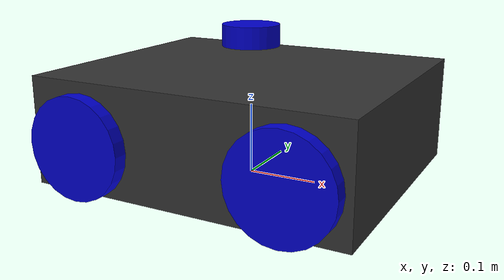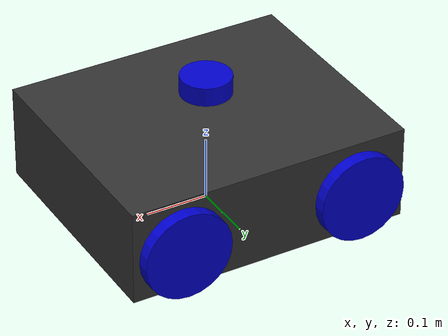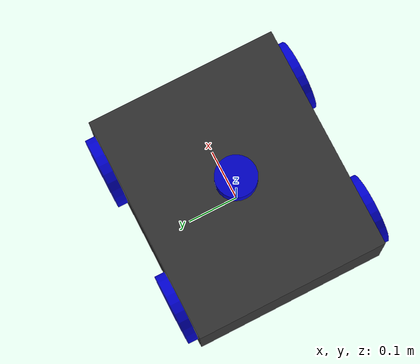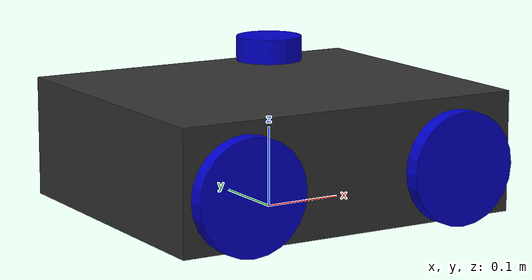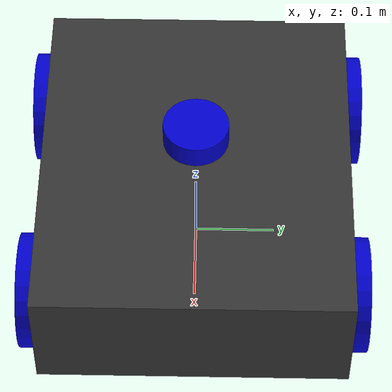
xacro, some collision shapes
<?xml version="1.0"?>
<robot name="robot_car" xmlns:xacro="http://www.ros.org/wiki/xacro">

  <!-- Include các module thành phần -->
  <xacro:include filename="$(find robot_description)/urdf/chassis.xacro"/>
  <xacro:include filename="$(find robot_description)/urdf/wheels.xacro"/>
  <xacro:include filename="$(find robot_description)/urdf/sensors.xacro"/>

  <!-- Khởi tạo các module -->
  <xacro:robot_chassis />
  <xacro:robot_wheels />
  <xacro:robot_sensors />

</robot>

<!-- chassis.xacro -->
<robot xmlns:xacro="http://www.ros.org/wiki/xacro">

  <!-- VẬT LIỆU (MATERIALS) -->
  <material name="dark_grey">
    <color rgba="0.2 0.2 0.2 1.0"/>
  </material>
  <material name="blue">
    <color rgba="0.0 0.0 0.8 1.0"/>
  </material>

  <!-- CHASSIS LINK -->
  <xacro:macro name="robot_chassis">
    <!-- base_footprint: Điểm quy chiếu trên mặt đất -->
    <link name="base_footprint"/>

    <!-- Khớp nối giữa base_footprint và base_link -->
    <joint name="base_footprint_joint" type="fixed">
      <parent link="base_footprint"/>
      <child link="base_link"/>
      <origin xyz="0.0 0.0 0.08" rpy="0.0 0.0 0.0"/>
    </joint>

    <!-- base_link: Khung gầm chính của xe -->
    <link name="base_link">
      <!-- Khối lượng và quán tính của khung xe -->
      <inertial>
        <origin xyz="0.0 0.0 0.0" rpy="0.0 0.0 0.0"/>
        <mass value="15.0"/>
        <inertia ixx="0.22" ixy="0.0" ixz="0.0" iyy="0.32" iyz="0.0" izz="0.45"/>
      </inertial>

      <!-- Visual cho RViz (hiển thị toàn bộ mesh nếu không cấu hình submesh) -->
      <visual>
        <origin xyz="0.0 0.0 0.0" rpy="0.0 0.0 0.0"/>
        <geometry>
          <mesh filename="package://robot_description/meshes/ogv.dae"/>
        </geometry>
        <material name="dark_grey"/>
      </visual>

      <!-- Collision hình học đơn giản để tăng hiệu năng tính toán vật lý -->
      <collision>
        <origin xyz="0.0 0.0 0.0" rpy="0.0 0.0 0.0"/>
        <geometry>
          <box size="0.45 0.38 0.15"/>
        </geometry>
      </collision>
    </link>

    <!-- Ghi đè visual trong Gazebo chỉ hiển thị submesh "Body" và "Axel" của xe -->
    <gazebo reference="base_link">
      <visual>
        <visibility_flags>1</visibility_flags>
        <geometry>
          <mesh>
            <uri>package://robot_description/meshes/ogv.dae</uri>
            <submesh>
              <name>Body</name>
              <center>false</center>
            </submesh>
          </mesh>
        </geometry>
      </visual>
      <!-- Thêm các phần trục bánh xe (Axels) vào visual của base_link -->
      <visual name="AxelFL">
        <visibility_flags>1</visibility_flags>
        <geometry>
          <mesh>
            <uri>package://robot_description/meshes/ogv.dae</uri>
            <submesh>
              <name>AxelFL</name>
              <center>false</center>
            </submesh>
          </mesh>
        </geometry>
      </visual>
      <visual name="AxelFR">
        <visibility_flags>1</visibility_flags>
        <geometry>
          <mesh>
            <uri>package://robot_description/meshes/ogv.dae</uri>
            <submesh>
              <name>AxelFR</name>
              <center>false</center>
            </submesh>
          </mesh>
        </geometry>
      </visual>
      <visual name="AxelBL">
        <visibility_flags>1</visibility_flags>
        <geometry>
          <mesh>
            <uri>package://robot_description/meshes/ogv.dae</uri>
            <submesh>
              <name>AxelBL</name>
              <center>false</center>
            </submesh>
          </mesh>
        </geometry>
      </visual>
      <visual name="AxelBR">
        <visibility_flags>1</visibility_flags>
        <geometry>
          <mesh>
            <uri>package://robot_description/meshes/ogv.dae</uri>
            <submesh>
              <name>AxelBR</name>
              <center>false</center>
            </submesh>
          </mesh>
        </geometry>
      </visual>
      <mu1>0.5</mu1>
      <mu2>0.5</mu2>
    </gazebo>
  </xacro:macro>

</robot>

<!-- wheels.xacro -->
<robot xmlns:xacro="http://www.ros.org/wiki/xacro">

  <!-- MACRO ĐỊNH NGHĨA MỘT BÁNH XE -->
  <xacro:macro name="wheel" params="prefix x y z submesh_name">
    <link name="${prefix}_wheel">
      <inertial>
        <origin xyz="0 0 0" rpy="0 0 0"/>
        <mass value="2.5"/>
        <inertia ixx="0.005" ixy="0" ixz="0" iyy="0.008" iyz="0" izz="0.005"/>
      </inertial>

      <!-- Visual tượng trưng trong RViz (Cylinder xoay ngang) -->
      <visual>
        <origin xyz="0 0 0" rpy="${pi/2} 0 0"/>
        <geometry>
          <cylinder radius="0.07" length="0.05"/>
        </geometry>
        <material name="blue"/>
      </visual>

      <collision>
        <origin xyz="0 0 0" rpy="${pi/2} 0 0"/>
        <geometry>
          <cylinder radius="0.07" length="0.05"/>
        </geometry>
      </collision>
    </link>

    <!-- Khớp quay bánh xe -->
    <joint name="${prefix}_wheel_joint" type="revolute">
      <parent link="base_link"/>
      <child link="${prefix}_wheel"/>
      <origin xyz="${x} ${y} ${z}" rpy="0 0 0"/>
      <axis xyz="0 1 0"/>
      <limit effort="100" velocity="20" lower="-1e18" upper="1e18"/>
      <dynamics damping="0.1" friction="0.05"/>
    </joint>

    <!-- Liên kết visual mesh chất lượng cao trong Gazebo và định vị tâm xoay -->
    <gazebo reference="${prefix}_wheel">
      <visual>
        <visibility_flags>1</visibility_flags>
        <geometry>
          <mesh>
            <uri>package://robot_description/meshes/ogv.dae</uri>
            <submesh>
              <name>${submesh_name}</name>
              <center>true</center>
            </submesh>
          </mesh>
        </geometry>
      </visual>
      <mu1>0.8</mu1>
      <mu2>0.8</mu2>
      <kp>1000000.0</kp>
      <kd>100.0</kd>
    </gazebo>
  </xacro:macro>

  <!-- MACRO KHỞI TẠO TẤT CẢ BÁNH XE VÀ DIFF DRIVE PLUGIN -->
  <xacro:macro name="robot_wheels">
    <!-- Spawn 4 bánh xe tương ứng với mô hình OGV -->
    <xacro:wheel prefix="front_left"  x="0.145"  y="0.185"  z="-0.01" submesh_name="WheelFL"/>
    <xacro:wheel prefix="front_right" x="0.145"  y="-0.185" z="-0.01" submesh_name="WheelFR"/>
    <xacro:wheel prefix="rear_left"   x="-0.145" y="0.185"  z="-0.01" submesh_name="WheelBL"/>
    <xacro:wheel prefix="rear_right"  x="-0.145" y="-0.185" z="-0.01" submesh_name="WheelBR"/>

    <!-- Plugin điều khiển 4 bánh vi sai (DiffDrive) trong Gazebo Sim -->
    <gazebo>
      <plugin filename="gz-sim-diff-drive-system" name="gz::sim::systems::DiffDrive">
        <!-- Cấu hình bánh bên trái (FL và RL) -->
        <left_joint>front_left_wheel_joint</left_joint>
        <left_joint>rear_left_wheel_joint</left_joint>

        <!-- Cấu hình bánh bên phải (FR và RR) -->
        <right_joint>front_right_wheel_joint</right_joint>
        <right_joint>rear_right_wheel_joint</right_joint>

        <!-- Thông số động học bánh xe -->
        <wheel_separation>0.37</wheel_separation>
        <wheel_radius>0.07</wheel_radius>

        <!-- Giới hạn gia tốc và mô-men xoắn -->
        <max_linear_acceleration>5.0</max_linear_acceleration>
        <max_angular_acceleration>10.0</max_angular_acceleration>

        <!-- Topic cấu hình đầu vào/đầu ra -->
        <topic>cmd_vel</topic>
        <odom_topic>odom</odom_topic>
        <tf_topic>tf</tf_topic>

        <!-- Xuất thông tin định vị (Odometry) -->
        <frame_id>odom</frame_id>
        <child_frame_id>base_footprint</child_frame_id>
        <publish_odom>true</publish_odom>
        <publish_odom_tf>true</publish_odom_tf>
        <publish_wheel_tf>true</publish_wheel_tf>
        <odom_publish_frequency>50</odom_publish_frequency>
      </plugin>

      <!-- Plugin xuất trạng thái các khớp (Joint State) để tính TF động -->
      <plugin filename="gz-sim-joint-state-publisher-system" name="gz::sim::systems::JointStatePublisher">
        <topic>joint_states</topic>
        <joint_name>front_left_wheel_joint</joint_name>
        <joint_name>front_right_wheel_joint</joint_name>
        <joint_name>rear_left_wheel_joint</joint_name>
        <joint_name>rear_right_wheel_joint</joint_name>
      </plugin>
    </gazebo>
  </xacro:macro>

</robot>

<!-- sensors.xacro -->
<robot xmlns:xacro="http://www.ros.org/wiki/xacro">

  <!-- SENSOR MACRO -->
  <xacro:macro name="robot_sensors">
    <!-- Link vật lý đại diện cho mắt đọc LiDAR -->
    <link name="lidar_link">
      <inertial>
        <origin xyz="0 0 0" rpy="0 0 0"/>
        <mass value="0.2"/>
        <inertia ixx="0.0001" ixy="0" ixz="0" iyy="0.0001" iyz="0" izz="0.0002"/>
      </inertial>
      <visual>
        <origin xyz="0 0 0" rpy="0 0 0"/>
        <geometry>
          <cylinder radius="0.04" length="0.03"/>
        </geometry>
        <material name="blue"/>
      </visual>
      <collision>
        <origin xyz="0 0 0" rpy="0 0 0"/>
        <geometry>
          <cylinder radius="0.04" length="0.03"/>
        </geometry>
      </collision>
    </link>

    <!-- Khớp gắn chặt LiDAR lên nóc khung gầm chính -->
    <joint name="lidar_joint" type="fixed">
      <parent link="base_link"/>
      <child link="lidar_link"/>
      <!-- Đặt ở tâm khung xe, nhô lên trên nóc 0.12m -->
      <origin xyz="0.0 0.0 0.12" rpy="0 0 0"/>
    </joint>

    <!-- Cấu hình cảm biến Lidar trong Gazebo Sim -->
    <gazebo reference="lidar_link">
      <sensor name="gpu_lidar" type="gpu_lidar">
        <pose>0 0 0 0 0 0</pose>
        <topic>scan</topic>
        <update_rate>10.0</update_rate>
        <visualize>true</visualize>
        <visibility_mask>2</visibility_mask>
        <ray>
          <scan>
            <horizontal>
              <samples>360</samples>
              <resolution>1</resolution>
              <min_angle>-3.14159265</min_angle>
              <max_angle>3.14159265</max_angle>
            </horizontal>
          </scan>
          <range>
            <min>0.08</min>
            <max>12.0</max>
            <resolution>0.01</resolution>
          </range>
        </ray>
        <gz_frame_id>lidar_link</gz_frame_id>
      </sensor>
      <!-- Ẩn visual lidar_link khỏi cảm biến (flags=1, bit 0 only → GUI only) -->
      <visual>
        <visibility_flags>1</visibility_flags>
      </visual>
    </gazebo>
  </xacro:macro>

</robot>
